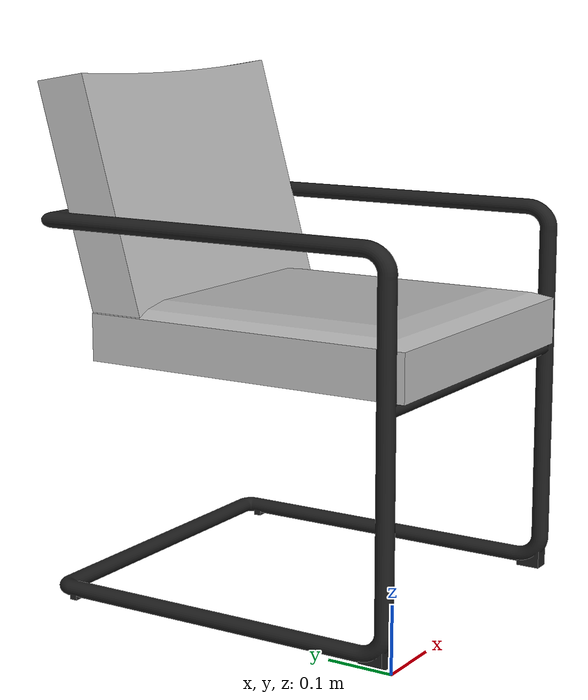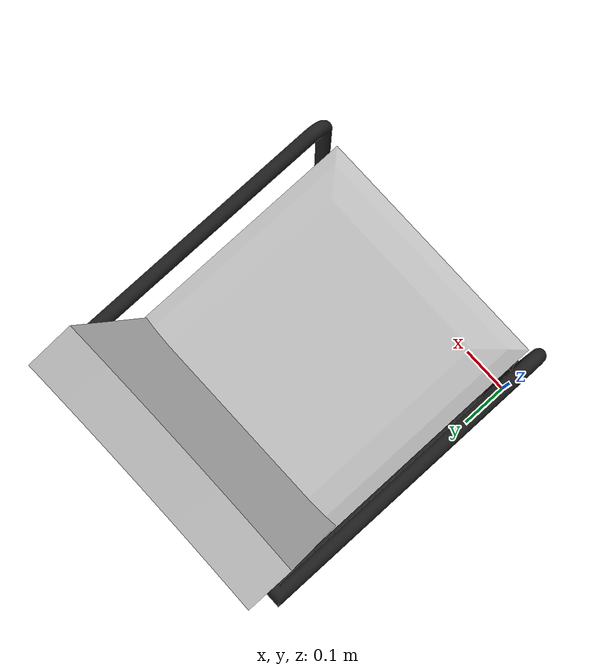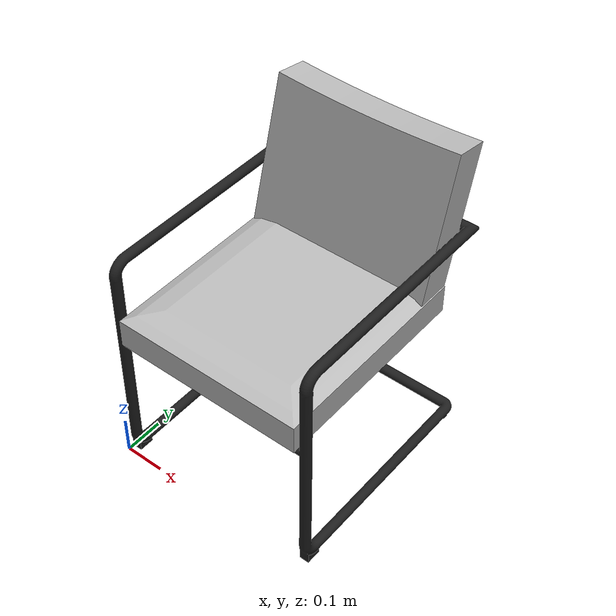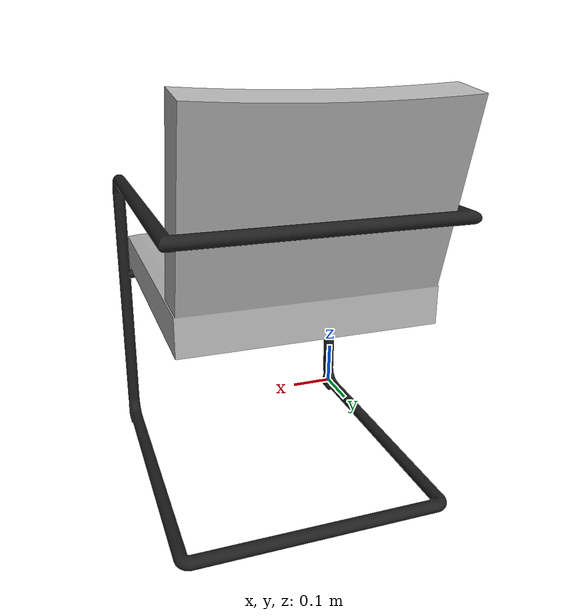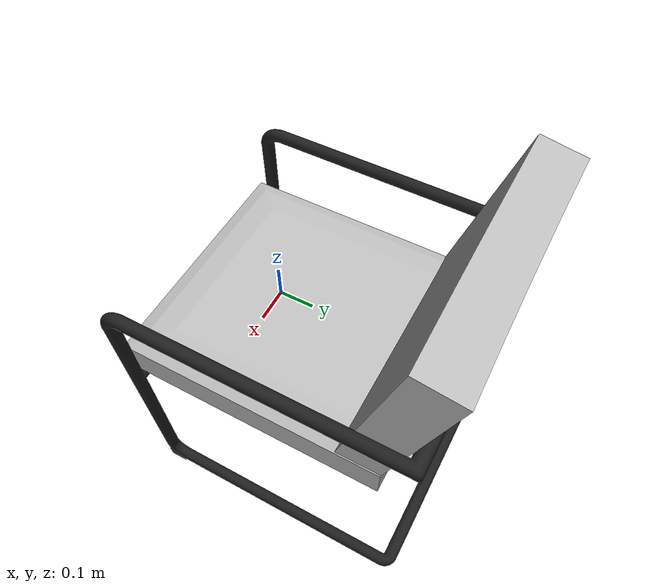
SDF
<?xml version="1.0" ?>
<sdf version="1.5">
  <model name="cafe_chair">
    <static>true</static>
    <link name="chair_link">
        <collision name="chair_collision">
         <geometry>
             <mesh>
                <uri>model://my_chair/meshes/model.dae</uri>
            </mesh>
        </geometry>
      </collision>

      <visual name="chair_mesh">
        <cast_shadows>true</cast_shadows>
        <geometry>
            <mesh>
                <uri>model://my_chair/meshes/model.dae</uri>
            </mesh>
        </geometry>
      </visual>
    </link>
  </model>
</sdf>
